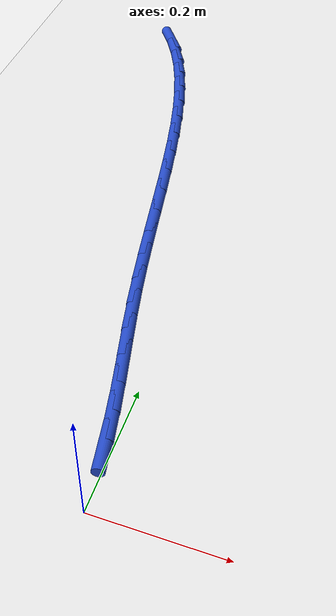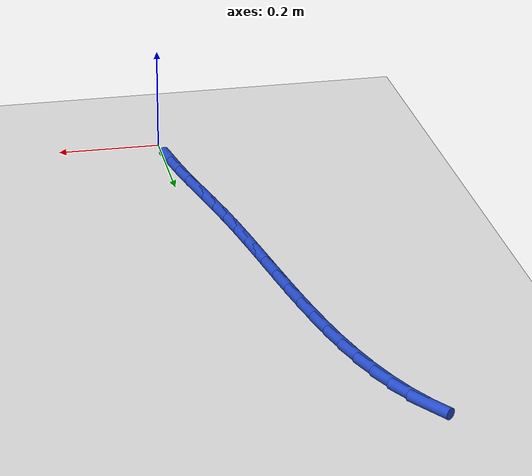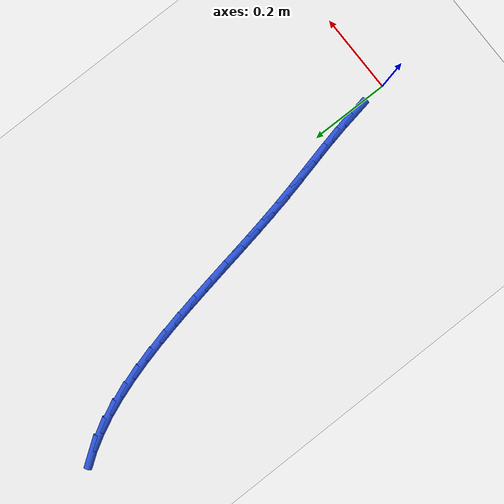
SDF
<sdf version="1.6">
 <world name="default">
  <model name="ground_plane">
   <static>1</static>
   <link name="link">
    <collision name="collision">
     <geometry><plane><normal>0 0 1</normal><size>100 100</size></plane></geometry>
     <surface><friction><ode><mu>100</mu><mu2>50</mu2></ode></friction></surface>
    </collision>
    <visual name="visual">
     <cast_shadows>0</cast_shadows>
     <geometry><plane><normal>0 0 1</normal><size>100 100</size></plane></geometry>
     <material>
      <script><uri>file://media/materials/scripts/gazebo.material</uri><name>Gazebo/WhiteGlow</name></script>
     </material>
    </visual>
   </link>
  </model>
  <model name="line">
   <link name="link_2">
    <pose>-0.009426393539881728 0.09341471846412026 0.01 0 1.57 -1.397143746763654</pose>
    <collision name="collision">
     <geometry><cylinder><radius>0.01</radius><length>0.08</length></cylinder></geometry>
    </collision>
    <visual name="visual">
     <material>
      <script><name>Gazebo/Blue</name><uri>file://media/materials/scripts/gazebo.material</uri></script>
     </material>
     <geometry><cylinder><radius>0.01</radius><length>0.08</length></cylinder></geometry>
    </visual>
   </link>
   <link name="link_3">
    <pose>-0.017572149075393492 0.13985060465585822 0.01 0 1.57 -1.3650510239960134</pose>
    <collision name="collision">
     <geometry><cylinder><radius>0.01</radius><length>0.08</length></cylinder></geometry>
    </collision>
    <visual name="visual">
     <material>
      <script><name>Gazebo/Blue</name><uri>file://media/materials/scripts/gazebo.material</uri></script>
     </material>
     <geometry><cylinder><radius>0.01</radius><length>0.08</length></cylinder></geometry>
    </visual>
   </link>
   <link name="link_4">
    <pose>-0.027297610983615894 0.18645114914990454 0.01 0 1.57 -1.3455753912851607</pose>
    <collision name="collision">
     <geometry><cylinder><radius>0.01</radius><length>0.08</length></cylinder></geometry>
    </collision>
    <visual name="visual">
     <material>
      <script><name>Gazebo/Blue</name><uri>file://media/materials/scripts/gazebo.material</uri></script>
     </material>
     <geometry><cylinder><radius>0.01</radius><length>0.08</length></cylinder></geometry>
    </visual>
   </link>
   <link name="link_5">
    <pose>-0.038071279661296434 0.23347558219315145 0.01 0 1.57 -1.338413678237085</pose>
    <collision name="collision">
     <geometry><cylinder><radius>0.01</radius><length>0.08</length></cylinder></geometry>
    </collision>
    <visual name="visual">
     <material>
      <script><name>Gazebo/Blue</name><uri>file://media/materials/scripts/gazebo.material</uri></script>
     </material>
     <geometry><cylinder><radius>0.01</radius><length>0.08</length></cylinder></geometry>
    </visual>
   </link>
   <link name="link_6">
    <pose>-0.049361655505182636 0.28118313403249134 0.01 0 1.57 -1.3430475991671973</pose>
    <collision name="collision">
     <geometry><cylinder><radius>0.01</radius><length>0.08</length></cylinder></geometry>
    </collision>
    <visual name="visual">
     <material>
      <script><name>Gazebo/Blue</name><uri>file://media/materials/scripts/gazebo.material</uri></script>
     </material>
     <geometry><cylinder><radius>0.01</radius><length>0.08</length></cylinder></geometry>
    </visual>
   </link>
   <link name="link_7">
    <pose>-0.06063723891202205 0.3298330349148165 0.01 0 1.57 -1.3586625292744745</pose>
    <collision name="collision">
     <geometry><cylinder><radius>0.01</radius><length>0.08</length></cylinder></geometry>
    </collision>
    <visual name="visual">
     <material>
      <script><name>Gazebo/Blue</name><uri>file://media/materials/scripts/gazebo.material</uri></script>
     </material>
     <geometry><cylinder><radius>0.01</radius><length>0.08</length></cylinder></geometry>
    </visual>
   </link>
   <link name="link_8">
    <pose>-0.07137293527979068 0.37967975036792156 0.01 0 1.57 -1.3778796878840285</pose>
    <collision name="collision">
     <geometry><cylinder><radius>0.01</radius><length>0.08</length></cylinder></geometry>
    </collision>
    <visual name="visual">
     <material>
      <script><name>Gazebo/Blue</name><uri>file://media/materials/scripts/gazebo.material</uri></script>
     </material>
     <geometry><cylinder><radius>0.01</radius><length>0.08</length></cylinder></geometry>
    </visual>
   </link>
   <link name="link_9">
    <pose>-0.08134936968535285 0.4307503192040393 0.01 0 1.57 -1.3913725739846556</pose>
    <collision name="collision">
     <geometry><cylinder><radius>0.01</radius><length>0.08</length></cylinder></geometry>
    </collision>
    <visual name="visual">
     <material>
      <script><name>Gazebo/Blue</name><uri>file://media/materials/scripts/gazebo.material</uri></script>
     </material>
     <geometry><cylinder><radius>0.01</radius><length>0.08</length></cylinder></geometry>
    </visual>
   </link>
   <link name="link_10">
    <pose>-0.09078064847961459 0.4827493108975732 0.01 0 1.57 -1.3988999933617758</pose>
    <collision name="collision">
     <geometry><cylinder><radius>0.01</radius><length>0.08</length></cylinder></geometry>
    </collision>
    <visual name="visual">
     <material>
      <script><name>Gazebo/Blue</name><uri>file://media/materials/scripts/gazebo.material</uri></script>
     </material>
     <geometry><cylinder><radius>0.01</radius><length>0.08</length></cylinder></geometry>
    </visual>
   </link>
   <link name="link_11">
    <pose>-0.09991381599921104 0.5353567921564089 0.01 0 1.57 -1.4007571224651425</pose>
    <collision name="collision">
     <geometry><cylinder><radius>0.01</radius><length>0.08</length></cylinder></geometry>
    </collision>
    <visual name="visual">
     <material>
      <script><name>Gazebo/Blue</name><uri>file://media/materials/scripts/gazebo.material</uri></script>
     </material>
     <geometry><cylinder><radius>0.01</radius><length>0.08</length></cylinder></geometry>
    </visual>
   </link>
   <link name="link_12">
    <pose>-0.10899591658077741 0.5882528296884322 0.01 0 1.57 -1.3970595021239554</pose>
    <collision name="collision">
     <geometry><cylinder><radius>0.01</radius><length>0.08</length></cylinder></geometry>
    </collision>
    <visual name="visual">
     <material>
      <script><name>Gazebo/Blue</name><uri>file://media/materials/scripts/gazebo.material</uri></script>
     </material>
     <geometry><cylinder><radius>0.01</radius><length>0.08</length></cylinder></geometry>
    </visual>
   </link>
   <link name="link_13">
    <pose>-0.11827399456094877 0.6411174902015286 0.01 0 1.57 -1.3877516949721467</pose>
    <collision name="collision">
     <geometry><cylinder><radius>0.01</radius><length>0.08</length></cylinder></geometry>
    </collision>
    <visual name="visual">
     <material>
      <script><name>Gazebo/Blue</name><uri>file://media/materials/scripts/gazebo.material</uri></script>
     </material>
     <geometry><cylinder><radius>0.01</radius><length>0.08</length></cylinder></geometry>
    </visual>
   </link>
   <link name="link_14">
    <pose>-0.12799509427636038 0.6936308404035842 0.01 0 1.57 -1.3726080922688408</pose>
    <collision name="collision">
     <geometry><cylinder><radius>0.01</radius><length>0.08</length></cylinder></geometry>
    </collision>
    <visual name="visual">
     <material>
      <script><name>Gazebo/Blue</name><uri>file://media/materials/scripts/gazebo.material</uri></script>
     </material>
     <geometry><cylinder><radius>0.01</radius><length>0.08</length></cylinder></geometry>
    </visual>
   </link>
   <link name="link_15">
    <pose>-0.13840626006364729 0.7454729470024842 0.01 0 1.57 -1.351226742205336</pose>
    <collision name="collision">
     <geometry><cylinder><radius>0.01</radius><length>0.08</length></cylinder></geometry>
    </collision>
    <visual name="visual">
     <material>
      <script><name>Gazebo/Blue</name><uri>file://media/materials/scripts/gazebo.material</uri></script>
     </material>
     <geometry><cylinder><radius>0.01</radius><length>0.08</length></cylinder></geometry>
    </visual>
   </link>
   <link name="link_16">
    <pose>-0.14975453625944482 0.7963238767061148 0.01 0 1.57 -1.3230178254168252</pose>
    <collision name="collision">
     <geometry><cylinder><radius>0.01</radius><length>0.08</length></cylinder></geometry>
    </collision>
    <visual name="visual">
     <material>
      <script><name>Gazebo/Blue</name><uri>file://media/materials/scripts/gazebo.material</uri></script>
     </material>
     <geometry><cylinder><radius>0.01</radius><length>0.08</length></cylinder></geometry>
    </visual>
   </link>
   <link name="link_17">
    <pose>-0.16228696720038802 0.8458636962223615 0.01 0 1.57 -1.287190034167568</pose>
    <collision name="collision">
     <geometry><cylinder><radius>0.01</radius><length>0.08</length></cylinder></geometry>
    </collision>
    <visual name="visual">
     <material>
      <script><name>Gazebo/Blue</name><uri>file://media/materials/scripts/gazebo.material</uri></script>
     </material>
     <geometry><cylinder><radius>0.01</radius><length>0.08</length></cylinder></geometry>
    </visual>
   </link>
   <link name="link_18">
    <pose>-0.17625059722311207 0.8937724722591098 0.01 0 1.57 -1.2427414599435607</pose>
    <collision name="collision">
     <geometry><cylinder><radius>0.01</radius><length>0.08</length></cylinder></geometry>
    </collision>
    <visual name="visual">
     <material>
      <script><name>Gazebo/Blue</name><uri>file://media/materials/scripts/gazebo.material</uri></script>
     </material>
     <geometry><cylinder><radius>0.01</radius><length>0.08</length></cylinder></geometry>
    </visual>
   </link>
   <link name="link_19">
    <pose>-0.19189247066425216 0.9397302715242458 0.01 0 1.57 -1.1884678519938565</pose>
    <collision name="collision">
     <geometry><cylinder><radius>0.01</radius><length>0.08</length></cylinder></geometry>
    </collision>
    <visual name="visual">
     <material>
      <script><name>Gazebo/Blue</name><uri>file://media/materials/scripts/gazebo.material</uri></script>
     </material>
     <geometry><cylinder><radius>0.01</radius><length>0.08</length></cylinder></geometry>
    </visual>
   </link>
   <link name="link_20">
    <pose>-0.20945963186044345 0.9834171607256552 0.01 0 1.57 -1.1230115500518927</pose>
    <collision name="collision">
     <geometry><cylinder><radius>0.01</radius><length>0.08</length></cylinder></geometry>
    </collision>
    <visual name="visual">
     <material>
      <script><name>Gazebo/Blue</name><uri>file://media/materials/scripts/gazebo.material</uri></script>
     </material>
     <geometry><cylinder><radius>0.01</radius><length>0.08</length></cylinder></geometry>
    </visual>
   </link>
   <link name="link_21">
    <pose>-0.22919912514832108 1.0245132065712232 0.01 0 1.57 -1.044988901586019</pose>
    <collision name="collision">
     <geometry><cylinder><radius>0.01</radius><length>0.08</length></cylinder></geometry>
    </collision>
    <visual name="visual">
     <material>
      <script><name>Gazebo/Blue</name><uri>file://media/materials/scripts/gazebo.material</uri></script>
     </material>
     <geometry><cylinder><radius>0.01</radius><length>0.08</length></cylinder></geometry>
    </visual>
   </link>
   <link name="link_22">
    <pose>-0.25135799486452015 1.062698475768836 0.01 0 1.57 -0.9532467809125815</pose>
    <collision name="collision">
     <geometry><cylinder><radius>0.01</radius><length>0.08</length></cylinder></geometry>
    </collision>
    <visual name="visual">
     <material>
      <script><name>Gazebo/Blue</name><uri>file://media/materials/scripts/gazebo.material</uri></script>
     </material>
     <geometry><cylinder><radius>0.01</radius><length>0.08</length></cylinder></geometry>
    </visual>
   </link>
  </model>
 </world>
</sdf>
